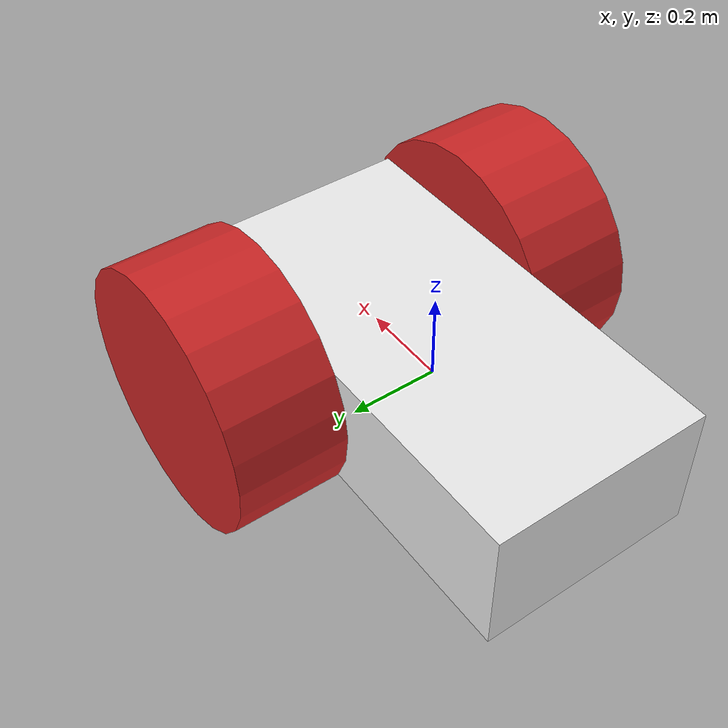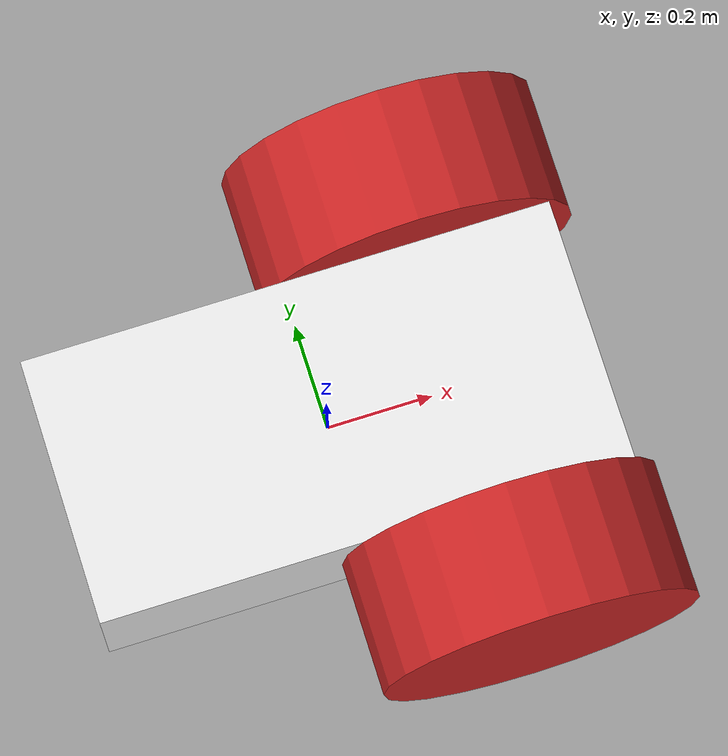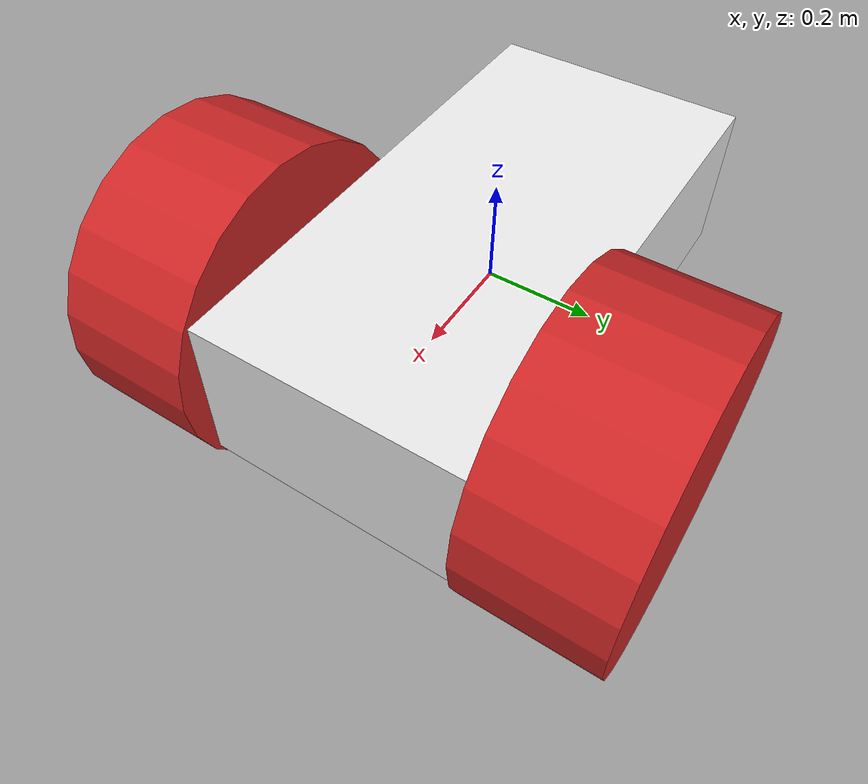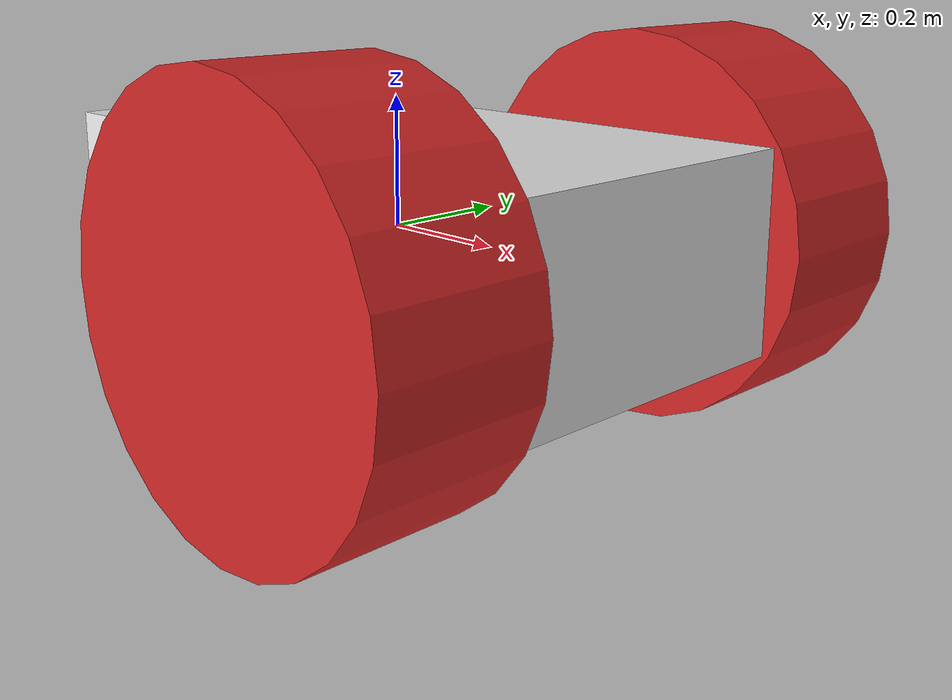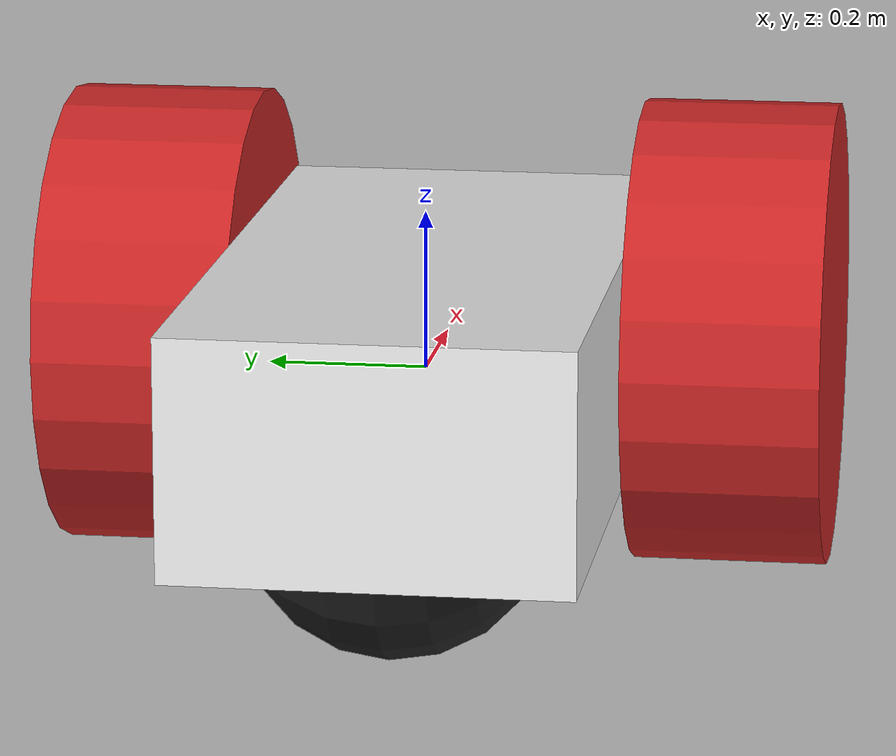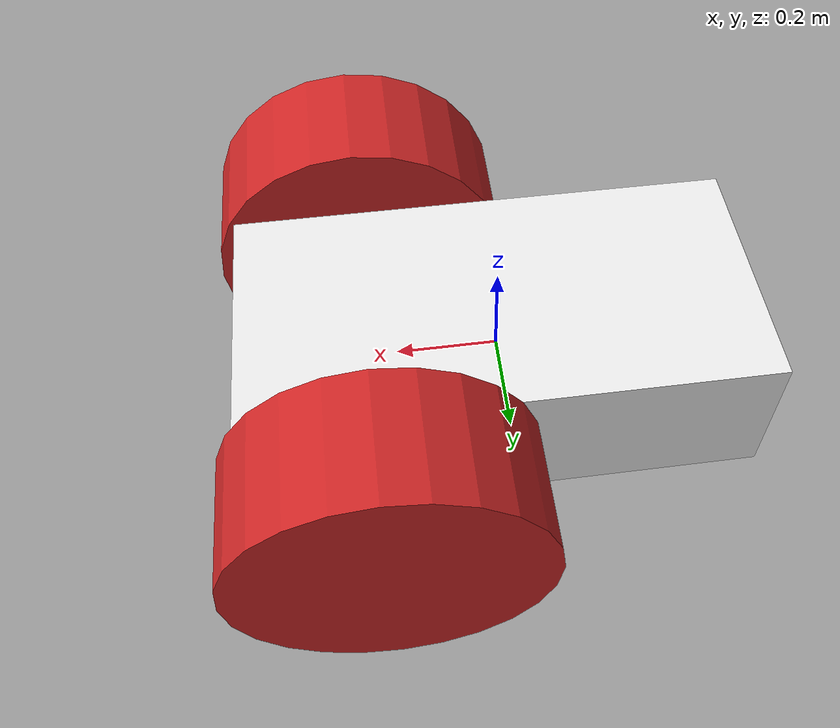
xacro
<?xml version="1.0"?>
<robot xmlns:xacro="http://www.ros.org/wiki/xacro" name="simple_rover">
  <xacro:property name="wheel_separation" value="0.070" />
  <xacro:property name="wheel_radius" value="0.3" />
  <xacro:property name="caster_wheel_radius" value="0.2" />
  <xacro:property name="wheel_width" value="0.25" />
  <xacro:property name="body_height" value="0.3" />
  <xacro:property name="body_width" value="0.5" />
  <xacro:property name="body_length" value="1.0" />

  <gazebo reference="base_link">
    <material>Gazebo/White</material>
    <mu1>0.2</mu1>
    <mu2>0.2</mu2>
  </gazebo>

  <gazebo reference="right_wheel">
    <material>Gazebo/Red</material>
    <mu1>0.84</mu1>
    <mu2>0.84</mu2>
  </gazebo>

  <gazebo reference="left_wheel">
    <material>Gazebo/Red</material>
    <mu1>0.84</mu1>
    <mu2>0.84</mu2>
  </gazebo>

  <gazebo reference="caster_wheel">
    <material>Gazebo/Black</material>
    <mu1>0.84</mu1>
    <mu2>0.84</mu2>
  </gazebo>

  <link name="base_link">
    <visual>
      <geometry>
        <box size="${body_length} ${body_width} ${body_height}"/>
      </geometry>
    </visual>

    <collision>
      <geometry>
        <box size="${body_length} ${body_width} ${body_height}"/>
      </geometry>
    </collision>

    <inertial>
      <mass value="1"/>
      <inertia ixx="0.166667" ixy="0" ixz="0" iyy="0.166667" iyz="0" izz="0.166667"/>
    </inertial>
  </link>

  <link name="left_wheel">
    <visual>
      <geometry>
        <cylinder length="${wheel_width}" radius="${wheel_radius}"/>
      </geometry>
    </visual>

    <collision>
      <geometry>
        <cylinder length="${wheel_width}" radius="${wheel_radius}"/>
      </geometry>
    </collision>

    <inertial>
      <mass value="1"/>
      <inertia ixx="0.145833" ixy="0.0" ixz="0.0" iyy="0.145833" iyz="0.0" izz="0.125"/>
    </inertial>
  </link>

  <link name="right_wheel">
    <visual>
      <geometry>
        <cylinder length="${wheel_width}" radius="${wheel_radius}"/>
      </geometry>
    </visual>

    <collision>
      <geometry>
        <cylinder length="${wheel_width}" radius="${wheel_radius}"/>
      </geometry>
    </collision>

    <inertial>
      <mass value="1"/>
      <inertia ixx="0.145833" ixy="0.0" ixz="0.0" iyy="0.145833" iyz="0.0" izz="0.125"/>
    </inertial>
  </link>

  <link name="caster_wheel">
    <visual>
      <geometry>
        <sphere radius="${caster_wheel_radius}"/>
      </geometry>
    </visual>

    <collision>
      <geometry>
        <sphere radius="${caster_wheel_radius}"/>
      </geometry>
    </collision>

    <inertial>
      <mass value="1"/>
      <inertia ixx="0.1" ixy="0.0" ixz="0.0" iyy="0.1" iyz="0.0" izz="0.1"/>
    </inertial>
  </link>

  <joint name="joint_left" type="continuous">
    <parent link="base_link"/>
    <child link="left_wheel"/>
    <axis xyz="0 0 1"/>
    <origin xyz="${body_width/2} ${body_width/2 + wheel_width/2} 0" rpy="-${pi/2} 0 0" />
    <dynamics friction="0.1"/>
  </joint>

  <joint name="joint_right" type="continuous">
    <parent link="base_link"/>
    <child link="right_wheel"/>
    <axis xyz="0 0 1"/>
    <origin xyz="${body_width/2} -${body_width/2 + wheel_width/2} 0" rpy="-${pi/2} 0 0" />
    <dynamics friction="0.1"/>
  </joint>

  <joint name="joint_caster_wheel" type="continuous">
    <parent link="base_link"/>
    <child link="caster_wheel"/>
    <axis xyz="0 0 1"/>
    <origin xyz="-${body_width/2} 0 ${caster_wheel_radius - wheel_radius}" rpy="${pi/2} 0 0"/>
    <dynamics friction="0.1"/>
  </joint>

  <gazebo>
    <plugin name="simple_rover_diff_drive" filename="libgazebo_ros_diff_drive.so">
      <update_rate>30</update_rate>

      <!-- wheels -->
      <left_joint>joint_left</left_joint>
      <right_joint>joint_right</right_joint>

      <!-- kinematics -->
      <wheel_separation>0.52</wheel_separation>
      <wheel_diameter>0.28</wheel_diameter>

      <!-- limits -->
      <max_wheel_torque>20</max_wheel_torque>
      <max_wheel_acceleration>1.0</max_wheel_acceleration>

      <!-- Receive velocity commands on this ROS topic -->
      <command_topic>cmd_vel</command_topic>
    </plugin>
  </gazebo>

</robot>
